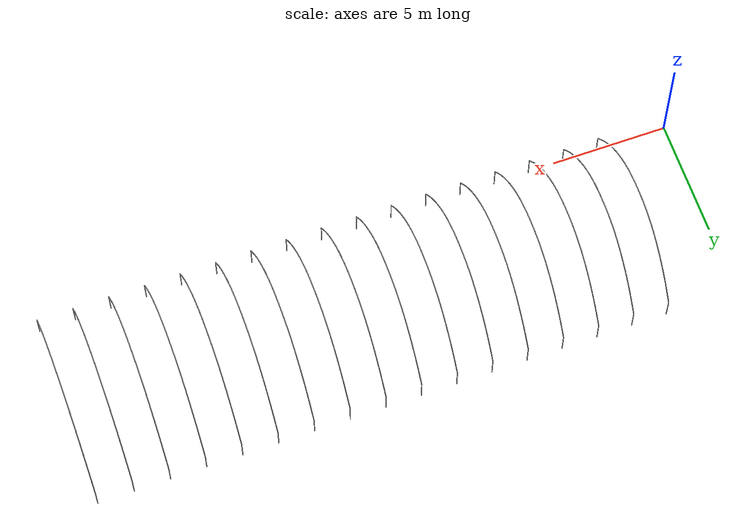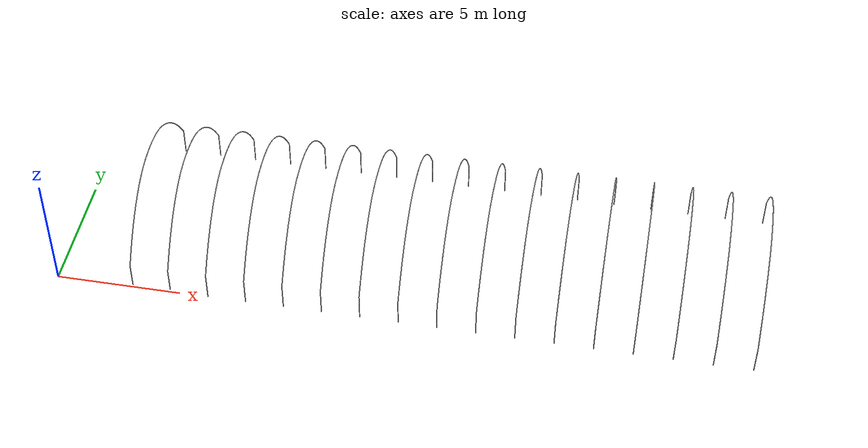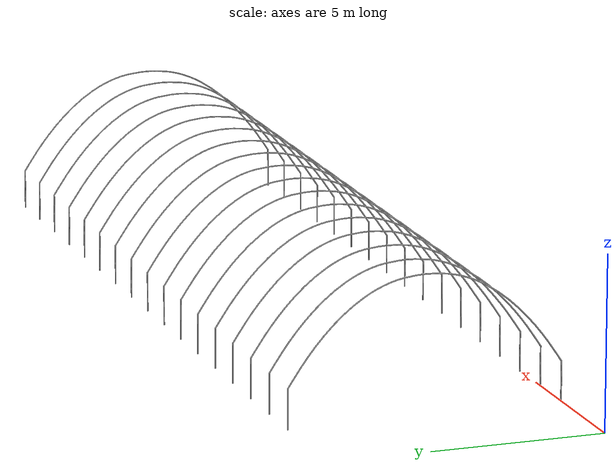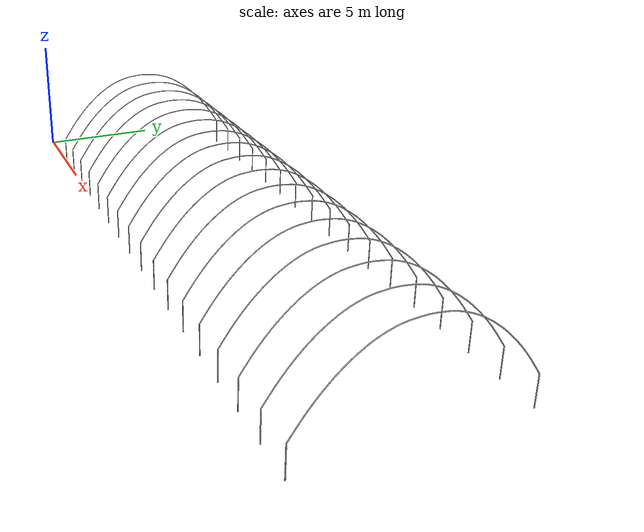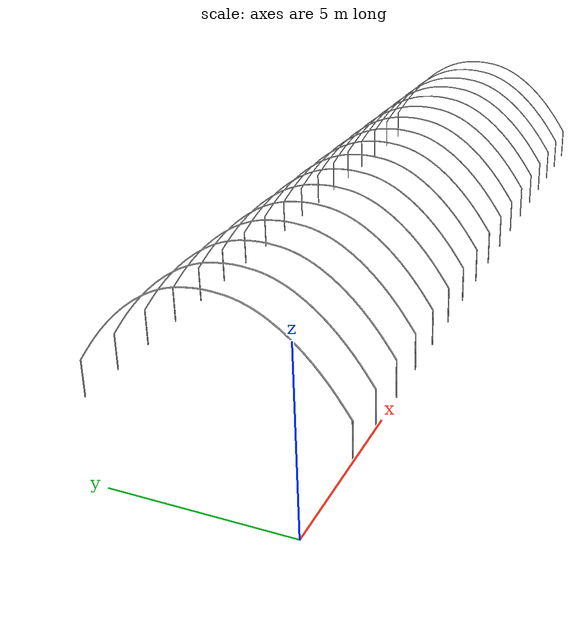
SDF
<?xml version="1.0" ?>
<sdf version="1.5">
    <model name="dummy_arch_17">
        <static>1</static>
        <pose>0.0 0.0 0.0 1.570796 0.0 1.570796</pose>
        <link name="link">
                <collision name="collision">
                        <geometry>
                            <mesh>
                                <uri>model://dummy_arch_17/dummy_arch_17.stl</uri>
                            </mesh>
                        </geometry>
                </collision>
                <visual name="visual">
                        <geometry>
                            <mesh>
                                <uri>model://dummy_arch_17/dummy_arch_17.stl</uri>
                            </mesh>
                        </geometry>
                        <material>
                                <script>
                                        <uri>file://media/materials/scripts/gazebo.material</uri>
                                        <name>Gazebo/Grey</name>
                                </script>
                                <shader type='vertex'>
                                <normal_map>__default__</normal_map>
                                </shader>
                                <ambient>0.75 0.75 0.75 1</ambient>
                                <diffuse>0.07 0.07 0.07 1</diffuse>
                                <specular>0.01 0.01 0.01 1</specular>
                                <emissive>0 0 0 1</emissive>
                        </material>
                </visual>
        </link>
    </model>
</sdf>
